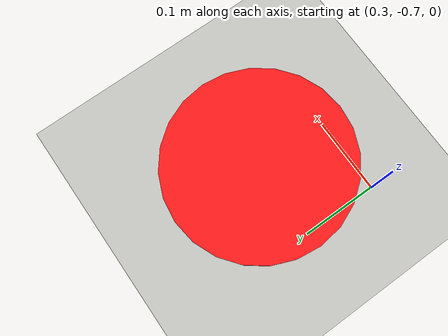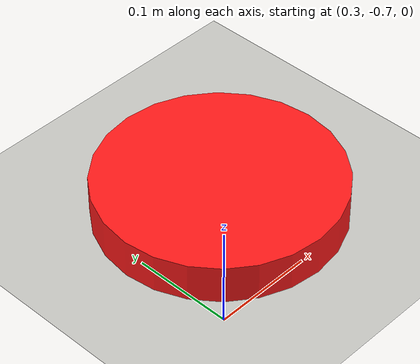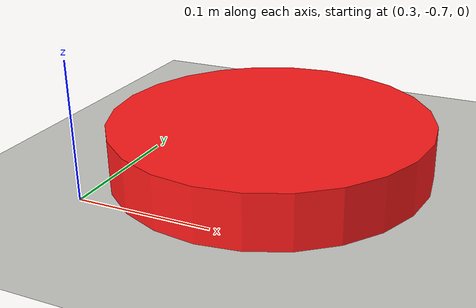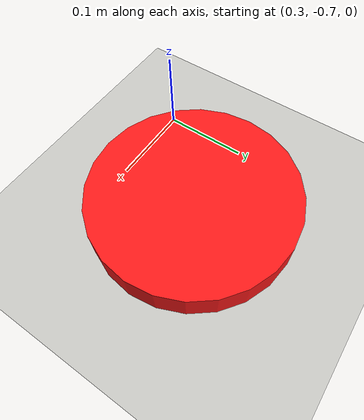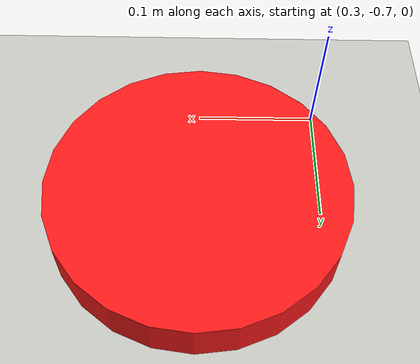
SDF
<sdf version="1.9">
 <world name="two_tb4_lab">
  <model name="ground_plane">
   <static>true</static>
   <link name="link">
    <collision name="collision">
     <geometry><plane><normal>0 0 1</normal><size>5 5</size></plane></geometry>
    </collision>
    <visual name="visual">
     <geometry><plane><normal>0 0 1</normal><size>5 5</size></plane></geometry>
     <material><ambient>0.78 0.78 0.76 1</ambient><diffuse>0.78 0.78 0.76 1</diffuse></material>
    </visual>
   </link>
  </model>
  <model name="target_marker">
   <static>true</static>
   <pose>0.400 -0.600 0.020 0.000 0.000 0.000</pose>
   <link name="link">
    <visual name="visual">
     <geometry><cylinder><radius>0.12</radius><length>0.04</length></cylinder></geometry>
     <material><ambient>1.0 0.1 0.1 1</ambient><diffuse>1.0 0.1 0.1 1</diffuse></material>
    </visual>
   </link>
  </model>
 </world>
</sdf>
